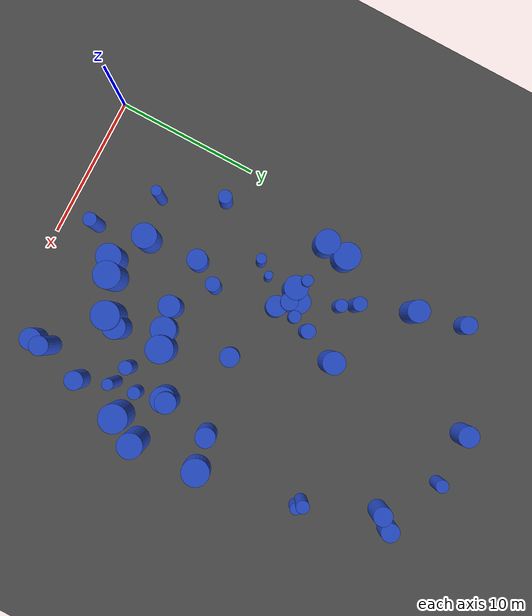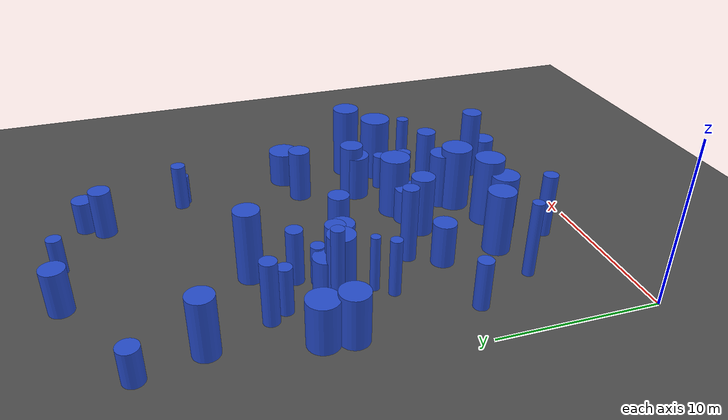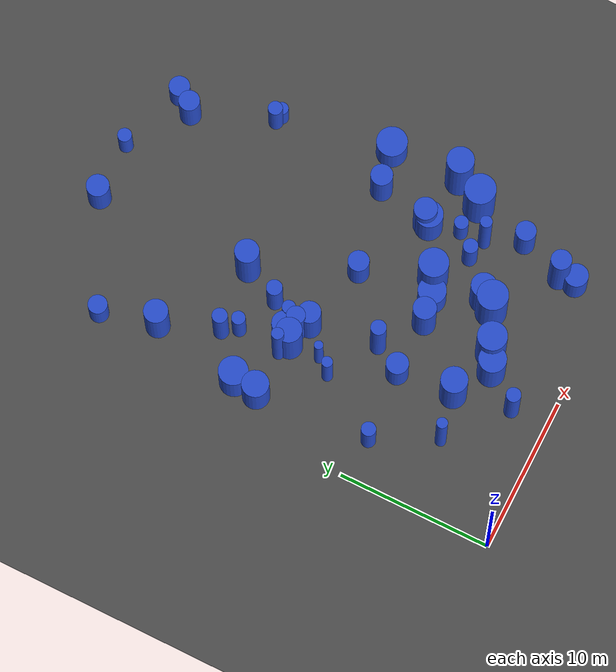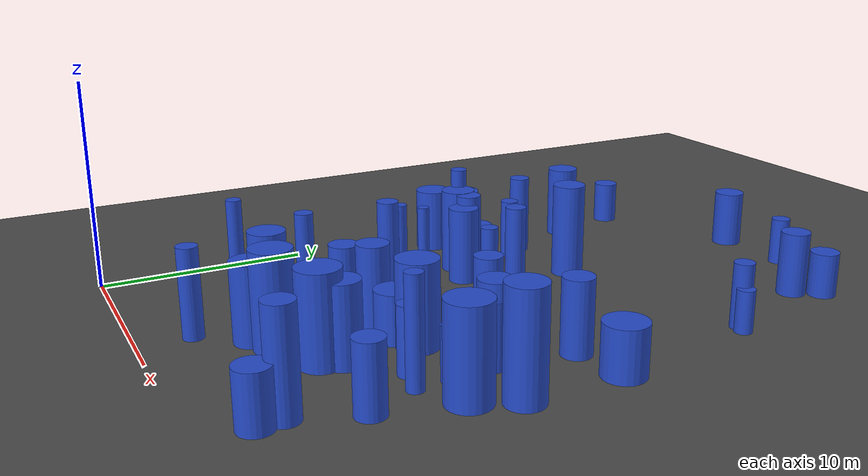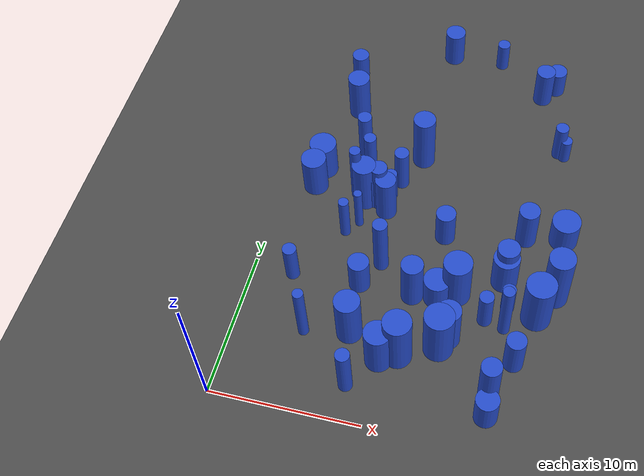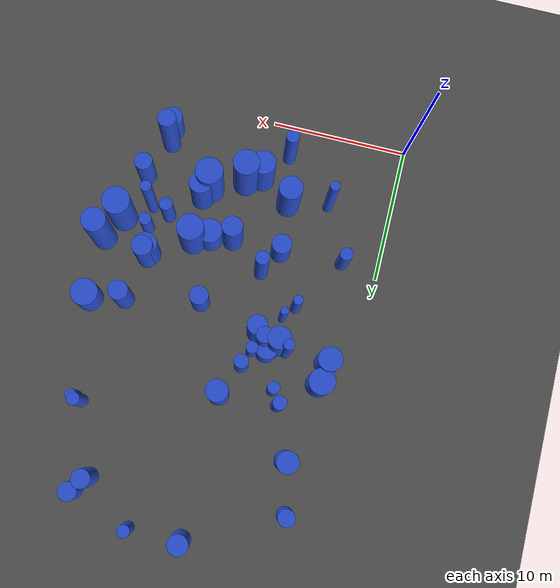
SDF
<sdf version="1.6">
 <world name="default">
  <model name="ground_plane">
   <static>1</static>
   <link name="link">
    <collision name="collision">
     <geometry><plane><normal>0 0 1</normal><size>100 100</size></plane></geometry>
     <surface><friction><ode><mu>100</mu><mu2>50</mu2></ode></friction></surface>
    </collision>
    <visual name="visual">
     <cast_shadows>0</cast_shadows>
     <geometry><plane><normal>0 0 1</normal><size>100 100</size></plane></geometry>
     <material>
      <script><uri>file://media/materials/scripts/gazebo.material</uri><name>Gazebo/Grey</name></script>
     </material>
    </visual>
   </link>
  </model>
  <model name="asphalt_plane">
   <static>1</static>
   <link name="link">
    <collision name="collision"><geometry><box><size>200 200 0.1</size></box></geometry></collision>
    <visual name="visual">
     <cast_shadows>0</cast_shadows>
     <geometry><box><size>200 200 0.1</size></box></geometry>
     <material>
      <script>
       <uri>model://asphalt_plane/materials/scripts</uri>
       <uri>model://asphalt_plane/materials/textures</uri>
       <name>vrc/asphalt</name>
      </script>
     </material>
    </visual>
   </link>
  </model>
  <model name="0">
   <static>0</static>
   <link name="link">
    <inertial>
     <mass>2</mass>
     <inertia><ixx>3.17312</ixx><ixy>0</ixy><ixz>0</ixz><iyy>3.17312</iyy><iyz>0</iyz><izz>0.73489</izz></inertia>
    </inertial>
    <collision name="collision">
     <geometry><cylinder><length>4.10293</length><radius>0.857257</radius></cylinder></geometry>
     <surface><contact><collide_without_contact>1</collide_without_contact></contact></surface>
    </collision>
    <visual name="visual">
     <geometry><cylinder><length>4.10293</length><radius>0.857257</radius></cylinder></geometry>
     <material>
      <script><uri>file://media/materials/scripts/gazebo.material</uri><name>Gazebo/Blue</name></script>
     </material>
    </visual>
    <gravity>0</gravity>
   </link>
   <pose>7.58804 6.08459 2.05146 0 -0 0</pose>
  </model>
  <model name="17">
   <static>0</static>
   <link name="link">
    <inertial>
     <mass>2</mass>
     <inertia><ixx>1.4202</ixx><ixy>0</ixy><ixz>0</ixz><iyy>1.4202</iyy><iyz>0</iyz><izz>0.970689</izz></inertia>
    </inertial>
    <collision name="collision">
     <geometry><cylinder><length>2.36836</length><radius>0.985235</radius></cylinder></geometry>
     <surface><contact><collide_without_contact>1</collide_without_contact></contact></surface>
    </collision>
    <visual name="visual">
     <geometry><cylinder><length>2.36836</length><radius>0.985235</radius></cylinder></geometry>
     <material>
      <script><uri>file://media/materials/scripts/gazebo.material</uri><name>Gazebo/Blue</name></script>
     </material>
    </visual>
    <gravity>0</gravity>
   </link>
   <pose>19.9852 16.4259 1.18418 0 -0 0</pose>
  </model>
  <model name="19">
   <static>0</static>
   <link name="link">
    <inertial>
     <mass>2</mass>
     <inertia><ixx>1.91883</ixx><ixy>0</ixy><ixz>0</ixz><iyy>1.91883</iyy><iyz>0</iyz><izz>0.790618</izz></inertia>
    </inertial>
    <collision name="collision">
     <geometry><cylinder><length>3.02343</length><radius>0.889167</radius></cylinder></geometry>
     <surface><contact><collide_without_contact>1</collide_without_contact></contact></surface>
    </collision>
    <visual name="visual">
     <geometry><cylinder><length>3.02343</length><radius>0.889167</radius></cylinder></geometry>
     <material>
      <script><uri>file://media/materials/scripts/gazebo.material</uri><name>Gazebo/Blue</name></script>
     </material>
    </visual>
    <gravity>0</gravity>
   </link>
   <pose>16.6325 12.2097 1.51172 0 -0 0</pose>
  </model>
  <model name="28">
   <static>0</static>
   <link name="link">
    <inertial>
     <mass>2</mass>
     <inertia><ixx>1.61305</ixx><ixy>0</ixy><ixz>0</ixz><iyy>1.61305</iyy><iyz>0</iyz><izz>0.463081</izz></inertia>
    </inertial>
    <collision name="collision">
     <geometry><cylinder><length>2.87908</length><radius>0.680501</radius></cylinder></geometry>
     <surface><contact><collide_without_contact>1</collide_without_contact></contact></surface>
    </collision>
    <visual name="visual">
     <geometry><cylinder><length>2.87908</length><radius>0.680501</radius></cylinder></geometry>
     <material>
      <script><uri>file://media/materials/scripts/gazebo.material</uri><name>Gazebo/Blue</name></script>
     </material>
    </visual>
    <gravity>0</gravity>
   </link>
   <pose>12.0274 14.794 1.43954 0 -0 0</pose>
  </model>
  <model name="32">
   <static>0</static>
   <link name="link">
    <inertial>
     <mass>2</mass>
     <inertia><ixx>3.9654</ixx><ixy>0</ixy><ixz>0</ixz><iyy>3.9654</iyy><iyz>0</iyz><izz>0.125912</izz></inertia>
    </inertial>
    <collision name="collision">
     <geometry><cylinder><length>4.83887</length><radius>0.354841</radius></cylinder></geometry>
     <surface><contact><collide_without_contact>1</collide_without_contact></contact></surface>
    </collision>
    <visual name="visual">
     <geometry><cylinder><length>4.83887</length><radius>0.354841</radius></cylinder></geometry>
     <material>
      <script><uri>file://media/materials/scripts/gazebo.material</uri><name>Gazebo/Blue</name></script>
     </material>
    </visual>
    <gravity>0</gravity>
   </link>
   <pose>4.66651 5.49479 2.41944 0 -0 0</pose>
  </model>
  <model name="39">
   <static>0</static>
   <link name="link">
    <inertial>
     <mass>2</mass>
     <inertia><ixx>1.84137</ixx><ixy>0</ixy><ixz>0</ixz><iyy>1.84137</iyy><iyz>0</iyz><izz>0.459908</izz></inertia>
    </inertial>
    <collision name="collision">
     <geometry><cylinder><length>3.10942</length><radius>0.678165</radius></cylinder></geometry>
     <surface><contact><collide_without_contact>1</collide_without_contact></contact></surface>
    </collision>
    <visual name="visual">
     <geometry><cylinder><length>3.10942</length><radius>0.678165</radius></cylinder></geometry>
     <material>
      <script><uri>file://media/materials/scripts/gazebo.material</uri><name>Gazebo/Blue</name></script>
     </material>
    </visual>
    <gravity>0</gravity>
   </link>
   <pose>16.5405 28.8099 1.55471 0 -0 0</pose>
  </model>
  <model name="45">
   <static>0</static>
   <link name="link">
    <inertial>
     <mass>2</mass>
     <inertia><ixx>1.28619</ixx><ixy>0</ixy><ixz>0</ixz><iyy>1.28619</iyy><iyz>0</iyz><izz>0.628767</izz></inertia>
    </inertial>
    <collision name="collision">
     <geometry><cylinder><length>2.41471</length><radius>0.792948</radius></cylinder></geometry>
     <surface><contact><collide_without_contact>1</collide_without_contact></contact></surface>
    </collision>
    <visual name="visual">
     <geometry><cylinder><length>2.41471</length><radius>0.792948</radius></cylinder></geometry>
     <material>
      <script><uri>file://media/materials/scripts/gazebo.material</uri><name>Gazebo/Blue</name></script>
     </material>
    </visual>
    <gravity>0</gravity>
   </link>
   <pose>6.54895 17.1856 1.20735 0 -0 0</pose>
  </model>
  <model name="49">
   <static>0</static>
   <link name="link">
    <inertial>
     <mass>2</mass>
     <inertia><ixx>1.03869</ixx><ixy>0</ixy><ixz>0</ixz><iyy>1.03869</iyy><iyz>0</iyz><izz>0.208201</izz></inertia>
    </inertial>
    <collision name="collision">
     <geometry><cylinder><length>2.36803</length><radius>0.45629</radius></cylinder></geometry>
     <surface><contact><collide_without_contact>1</collide_without_contact></contact></surface>
    </collision>
    <visual name="visual">
     <geometry><cylinder><length>2.36803</length><radius>0.45629</radius></cylinder></geometry>
     <material>
      <script><uri>file://media/materials/scripts/gazebo.material</uri><name>Gazebo/Blue</name></script>
     </material>
    </visual>
    <gravity>0</gravity>
   </link>
   <pose>12.9469 31.5137 1.18401 0 -0 0</pose>
  </model>
  <model name="51">
   <static>0</static>
   <link name="link">
    <inertial>
     <mass>2</mass>
     <inertia><ixx>4.04703</ixx><ixy>0</ixy><ixz>0</ixz><iyy>4.04703</iyy><iyz>0</iyz><izz>0.151938</izz></inertia>
    </inertial>
    <collision name="collision">
     <geometry><cylinder><length>4.88122</length><radius>0.389792</radius></cylinder></geometry>
     <surface><contact><collide_without_contact>1</collide_without_contact></contact></surface>
    </collision>
    <visual name="visual">
     <geometry><cylinder><length>4.88122</length><radius>0.389792</radius></cylinder></geometry>
     <material>
      <script><uri>file://media/materials/scripts/gazebo.material</uri><name>Gazebo/Blue</name></script>
     </material>
    </visual>
    <gravity>0</gravity>
   </link>
   <pose>17.2535 8.66033 2.44061 0 -0 0</pose>
  </model>
  <model name="54">
   <static>0</static>
   <link name="link">
    <inertial>
     <mass>2</mass>
     <inertia><ixx>1.90004</ixx><ixy>0</ixy><ixz>0</ixz><iyy>1.90004</iyy><iyz>0</iyz><izz>0.889584</izz></inertia>
    </inertial>
    <collision name="collision">
     <geometry><cylinder><length>2.95491</length><radius>0.943178</radius></cylinder></geometry>
     <surface><contact><collide_without_contact>1</collide_without_contact></contact></surface>
    </collision>
    <visual name="visual">
     <geometry><cylinder><length>2.95491</length><radius>0.943178</radius></cylinder></geometry>
     <material>
      <script><uri>file://media/materials/scripts/gazebo.material</uri><name>Gazebo/Blue</name></script>
     </material>
    </visual>
    <gravity>0</gravity>
   </link>
   <pose>2.3369 18.5513 1.47745 0 -0 0</pose>
  </model>
  <model name="55">
   <static>0</static>
   <link name="link">
    <inertial>
     <mass>2</mass>
     <inertia><ixx>2.77636</ixx><ixy>0</ixy><ixz>0</ixz><iyy>2.77636</iyy><iyz>0</iyz><izz>0.243438</izz></inertia>
    </inertial>
    <collision name="collision">
     <geometry><cylinder><length>3.99097</length><radius>0.493394</radius></cylinder></geometry>
     <surface><contact><collide_without_contact>1</collide_without_contact></contact></surface>
    </collision>
    <visual name="visual">
     <geometry><cylinder><length>3.99097</length><radius>0.493394</radius></cylinder></geometry>
     <material>
      <script><uri>file://media/materials/scripts/gazebo.material</uri><name>Gazebo/Blue</name></script>
     </material>
    </visual>
    <gravity>0</gravity>
   </link>
   <pose>4.84616 20.723 1.99548 0 -0 0</pose>
  </model>
  <model name="65">
   <static>0</static>
   <link name="link">
    <inertial>
     <mass>2</mass>
     <inertia><ixx>2.68412</ixx><ixy>0</ixy><ixz>0</ixz><iyy>2.68412</iyy><iyz>0</iyz><izz>0.778534</izz></inertia>
    </inertial>
    <collision name="collision">
     <geometry><cylinder><length>3.71067</length><radius>0.882346</radius></cylinder></geometry>
     <surface><contact><collide_without_contact>1</collide_without_contact></contact></surface>
    </collision>
    <visual name="visual">
     <geometry><cylinder><length>3.71067</length><radius>0.882346</radius></cylinder></geometry>
     <material>
      <script><uri>file://media/materials/scripts/gazebo.material</uri><name>Gazebo/Blue</name></script>
     </material>
    </visual>
    <gravity>0</gravity>
   </link>
   <pose>9.89569 4.60056 1.85534 0 -0 0</pose>
  </model>
  <model name="67">
   <static>0</static>
   <link name="link">
    <inertial>
     <mass>2</mass>
     <inertia><ixx>2.5861</ixx><ixy>0</ixy><ixz>0</ixz><iyy>2.5861</iyy><iyz>0</iyz><izz>0.518654</izz></inertia>
    </inertial>
    <collision name="collision">
     <geometry><cylinder><length>3.7364</length><radius>0.720177</radius></cylinder></geometry>
     <surface><contact><collide_without_contact>1</collide_without_contact></contact></surface>
    </collision>
    <visual name="visual">
     <geometry><cylinder><length>3.7364</length><radius>0.720177</radius></cylinder></geometry>
     <material>
      <script><uri>file://media/materials/scripts/gazebo.material</uri><name>Gazebo/Blue</name></script>
     </material>
    </visual>
    <gravity>0</gravity>
   </link>
   <pose>7.55571 15.9335 1.8682 0 -0 0</pose>
  </model>
  <model name="68">
   <static>0</static>
   <link name="link">
    <inertial>
     <mass>2</mass>
     <inertia><ixx>1.89087</ixx><ixy>0</ixy><ixz>0</ixz><iyy>1.89087</iyy><iyz>0</iyz><izz>0.429731</izz></inertia>
    </inertial>
    <collision name="collision">
     <geometry><cylinder><length>3.17112</length><radius>0.655539</radius></cylinder></geometry>
     <surface><contact><collide_without_contact>1</collide_without_contact></contact></surface>
    </collision>
    <visual name="visual">
     <geometry><cylinder><length>3.17112</length><radius>0.655539</radius></cylinder></geometry>
     <material>
      <script><uri>file://media/materials/scripts/gazebo.material</uri><name>Gazebo/Blue</name></script>
     </material>
    </visual>
    <gravity>0</gravity>
   </link>
   <pose>18.2845 6.37617 1.58556 0 -0 0</pose>
  </model>
  <model name="70">
   <static>0</static>
   <link name="link">
    <inertial>
     <mass>2</mass>
     <inertia><ixx>3.78775</ixx><ixy>0</ixy><ixz>0</ixz><iyy>3.78775</iyy><iyz>0</iyz><izz>0.890965</izz></inertia>
    </inertial>
    <collision name="collision">
     <geometry><cylinder><length>4.47813</length><radius>0.943909</radius></cylinder></geometry>
     <surface><contact><collide_without_contact>1</collide_without_contact></contact></surface>
    </collision>
    <visual name="visual">
     <geometry><cylinder><length>4.47813</length><radius>0.943909</radius></cylinder></geometry>
     <material>
      <script><uri>file://media/materials/scripts/gazebo.material</uri><name>Gazebo/Blue</name></script>
     </material>
    </visual>
    <gravity>0</gravity>
   </link>
   <pose>11.0126 5.18411 2.23906 0 -0 0</pose>
  </model>
  <model name="72">
   <static>0</static>
   <link name="link">
    <inertial>
     <mass>2</mass>
     <inertia>
      <ixx>2.14031</ixx>
      <ixy>0</ixy>
      <ixz>0</ixz>
      <iyy>2.14031</iyy>
      <iyz>0</iyz>
      <izz>0.0819198</izz>
     </inertia>
    </inertial>
    <collision name="collision">
     <geometry><cylinder><length>3.5491</length><radius>0.286216</radius></cylinder></geometry>
     <surface><contact><collide_without_contact>1</collide_without_contact></contact></surface>
    </collision>
    <visual name="visual">
     <geometry><cylinder><length>3.5491</length><radius>0.286216</radius></cylinder></geometry>
     <material>
      <script><uri>file://media/materials/scripts/gazebo.material</uri><name>Gazebo/Blue</name></script>
     </material>
    </visual>
    <gravity>0</gravity>
   </link>
   <pose>5.98317 14.5224 1.77455 0 -0 0</pose>
  </model>
  <model name="96">
   <static>0</static>
   <link name="link">
    <inertial>
     <mass>2</mass>
     <inertia><ixx>3.12972</ixx><ixy>0</ixy><ixz>0</ixz><iyy>3.12972</iyy><iyz>0</iyz><izz>0.918622</izz></inertia>
    </inertial>
    <collision name="collision">
     <geometry><cylinder><length>4.00281</length><radius>0.958448</radius></cylinder></geometry>
     <surface><contact><collide_without_contact>1</collide_without_contact></contact></surface>
    </collision>
    <visual name="visual">
     <geometry><cylinder><length>4.00281</length><radius>0.958448</radius></cylinder></geometry>
     <material>
      <script><uri>file://media/materials/scripts/gazebo.material</uri><name>Gazebo/Blue</name></script>
     </material>
    </visual>
    <gravity>0</gravity>
   </link>
   <pose>13.7137 10.487 2.0014 0 -0 0</pose>
  </model>
  <model name="98">
   <static>0</static>
   <link name="link">
    <inertial>
     <mass>2</mass>
     <inertia><ixx>3.96173</ixx><ixy>0</ixy><ixz>0</ixz><iyy>3.96173</iyy><iyz>0</iyz><izz>0.434607</izz></inertia>
    </inertial>
    <collision name="collision">
     <geometry><cylinder><length>4.73989</length><radius>0.659247</radius></cylinder></geometry>
     <surface><contact><collide_without_contact>1</collide_without_contact></contact></surface>
    </collision>
    <visual name="visual">
     <geometry><cylinder><length>4.73989</length><radius>0.659247</radius></cylinder></geometry>
     <material>
      <script><uri>file://media/materials/scripts/gazebo.material</uri><name>Gazebo/Blue</name></script>
     </material>
    </visual>
    <gravity>0</gravity>
   </link>
   <pose>17.1698 3.49956 2.36994 0 -0 0</pose>
  </model>
  <model name="100">
   <static>0</static>
   <link name="link">
    <inertial>
     <mass>2</mass>
     <inertia><ixx>3.05003</ixx><ixy>0</ixy><ixz>0</ixz><iyy>3.05003</iyy><iyz>0</iyz><izz>0.222899</izz></inertia>
    </inertial>
    <collision name="collision">
     <geometry><cylinder><length>4.19899</length><radius>0.472122</radius></cylinder></geometry>
     <surface><contact><collide_without_contact>1</collide_without_contact></contact></surface>
    </collision>
    <visual name="visual">
     <geometry><cylinder><length>4.19899</length><radius>0.472122</radius></cylinder></geometry>
     <material>
      <script><uri>file://media/materials/scripts/gazebo.material</uri><name>Gazebo/Blue</name></script>
     </material>
    </visual>
    <gravity>0</gravity>
   </link>
   <pose>8.32558 2.43405 2.09949 0 -0 0</pose>
  </model>
  <model name="102">
   <static>0</static>
   <link name="link">
    <inertial>
     <mass>2</mass>
     <inertia><ixx>3.49696</ixx><ixy>0</ixy><ixz>0</ixz><iyy>3.49696</iyy><iyz>0</iyz><izz>0.981406</izz></inertia>
    </inertial>
    <collision name="collision">
     <geometry><cylinder><length>4.24706</length><radius>0.99066</radius></cylinder></geometry>
     <surface><contact><collide_without_contact>1</collide_without_contact></contact></surface>
    </collision>
    <visual name="visual">
     <geometry><cylinder><length>4.24706</length><radius>0.99066</radius></cylinder></geometry>
     <material>
      <script><uri>file://media/materials/scripts/gazebo.material</uri><name>Gazebo/Blue</name></script>
     </material>
    </visual>
    <gravity>0</gravity>
   </link>
   <pose>13.4145 6.31929 2.12353 0 -0 0</pose>
  </model>
  <model name="119">
   <static>0</static>
   <link name="link">
    <inertial>
     <mass>2</mass>
     <inertia><ixx>1.01805</ixx><ixy>0</ixy><ixz>0</ixz><iyy>1.01805</iyy><iyz>0</iyz><izz>0.447713</izz></inertia>
    </inertial>
    <collision name="collision">
     <geometry><cylinder><length>2.18293</length><radius>0.669113</radius></cylinder></geometry>
     <surface><contact><collide_without_contact>1</collide_without_contact></contact></surface>
    </collision>
    <visual name="visual">
     <geometry><cylinder><length>2.18293</length><radius>0.669113</radius></cylinder></geometry>
     <material>
      <script><uri>file://media/materials/scripts/gazebo.material</uri><name>Gazebo/Blue</name></script>
     </material>
    </visual>
    <gravity>0</gravity>
   </link>
   <pose>17.3628 29.9476 1.09146 0 -0 0</pose>
  </model>
  <model name="128">
   <static>0</static>
   <link name="link">
    <inertial>
     <mass>2</mass>
     <inertia><ixx>2.24245</ixx><ixy>0</ixy><ixz>0</ixz><iyy>2.24245</iyy><iyz>0</iyz><izz>0.12581</izz></inertia>
    </inertial>
    <collision name="collision">
     <geometry><cylinder><length>3.61625</length><radius>0.354698</radius></cylinder></geometry>
     <surface><contact><collide_without_contact>1</collide_without_contact></contact></surface>
    </collision>
    <visual name="visual">
     <geometry><cylinder><length>3.61625</length><radius>0.354698</radius></cylinder></geometry>
     <material>
      <script><uri>file://media/materials/scripts/gazebo.material</uri><name>Gazebo/Blue</name></script>
     </material>
    </visual>
    <gravity>0</gravity>
   </link>
   <pose>5.24774 13.5813 1.80813 0 -0 0</pose>
  </model>
  <model name="131">
   <static>0</static>
   <link name="link">
    <inertial>
     <mass>2</mass>
     <inertia><ixx>1.00721</ixx><ixy>0</ixy><ixz>0</ixz><iyy>1.00721</iyy><iyz>0</iyz><izz>0.383866</izz></inertia>
    </inertial>
    <collision name="collision">
     <geometry><cylinder><length>2.2117</length><radius>0.61957</radius></cylinder></geometry>
     <surface><contact><collide_without_contact>1</collide_without_contact></contact></surface>
    </collision>
    <visual name="visual">
     <geometry><cylinder><length>2.2117</length><radius>0.61957</radius></cylinder></geometry>
     <material>
      <script><uri>file://media/materials/scripts/gazebo.material</uri><name>Gazebo/Blue</name></script>
     </material>
    </visual>
    <gravity>0</gravity>
   </link>
   <pose>2.52632 28.0362 1.10585 0 -0 0</pose>
  </model>
  <model name="134">
   <static>0</static>
   <link name="link">
    <inertial>
     <mass>2</mass>
     <inertia>
      <ixx>2.76564</ixx>
      <ixy>0</ixy>
      <ixz>0</ixz>
      <iyy>2.76564</iyy>
      <iyz>0</iyz>
      <izz>0.0823417</izz>
     </inertia>
    </inertial>
    <collision name="collision">
     <geometry><cylinder><length>4.04312</length><radius>0.286952</radius></cylinder></geometry>
     <surface><contact><collide_without_contact>1</collide_without_contact></contact></surface>
    </collision>
    <visual name="visual">
     <geometry><cylinder><length>4.04312</length><radius>0.286952</radius></cylinder></geometry>
     <material>
      <script><uri>file://media/materials/scripts/gazebo.material</uri><name>Gazebo/Blue</name></script>
     </material>
    </visual>
    <gravity>0</gravity>
   </link>
   <pose>8.13673 11.5728 2.02156 0 -0 0</pose>
  </model>
  <model name="142">
   <static>0</static>
   <link name="link">
    <inertial>
     <mass>2</mass>
     <inertia><ixx>1.31696</ixx><ixy>0</ixy><ixz>0</ixz><iyy>1.31696</iyy><iyz>0</iyz><izz>0.811578</izz></inertia>
    </inertial>
    <collision name="collision">
     <geometry><cylinder><length>2.33816</length><radius>0.900876</radius></cylinder></geometry>
     <surface><contact><collide_without_contact>1</collide_without_contact></contact></surface>
    </collision>
    <visual name="visual">
     <geometry><cylinder><length>2.33816</length><radius>0.900876</radius></cylinder></geometry>
     <material>
      <script><uri>file://media/materials/scripts/gazebo.material</uri><name>Gazebo/Blue</name></script>
     </material>
    </visual>
    <gravity>0</gravity>
   </link>
   <pose>12.5077 9.96442 1.16908 0 -0 0</pose>
  </model>
  <model name="144">
   <static>0</static>
   <link name="link">
    <inertial>
     <mass>2</mass>
     <inertia><ixx>2.28391</ixx><ixy>0</ixy><ixz>0</ixz><iyy>2.28391</iyy><iyz>0</iyz><izz>0.498376</izz></inertia>
    </inertial>
    <collision name="collision">
     <geometry><cylinder><length>3.49405</length><radius>0.705958</radius></cylinder></geometry>
     <surface><contact><collide_without_contact>1</collide_without_contact></contact></surface>
    </collision>
    <visual name="visual">
     <geometry><cylinder><length>3.49405</length><radius>0.705958</radius></cylinder></geometry>
     <material>
      <script><uri>file://media/materials/scripts/gazebo.material</uri><name>Gazebo/Blue</name></script>
     </material>
    </visual>
    <gravity>0</gravity>
   </link>
   <pose>17.4609 15.8955 1.74702 0 -0 0</pose>
  </model>
  <model name="146">
   <static>0</static>
   <link name="link">
    <inertial>
     <mass>2</mass>
     <inertia><ixx>2.62442</ixx><ixy>0</ixy><ixz>0</ixz><iyy>2.62442</iyy><iyz>0</iyz><izz>0.606882</izz></inertia>
    </inertial>
    <collision name="collision">
     <geometry><cylinder><length>3.73174</length><radius>0.779026</radius></cylinder></geometry>
     <surface><contact><collide_without_contact>1</collide_without_contact></contact></surface>
    </collision>
    <visual name="visual">
     <geometry><cylinder><length>3.73174</length><radius>0.779026</radius></cylinder></geometry>
     <material>
      <script><uri>file://media/materials/scripts/gazebo.material</uri><name>Gazebo/Blue</name></script>
     </material>
    </visual>
    <gravity>0</gravity>
   </link>
   <pose>3.41377 24.3972 1.86587 0 -0 0</pose>
  </model>
  <model name="150">
   <static>0</static>
   <link name="link">
    <inertial>
     <mass>2</mass>
     <inertia><ixx>1.70241</ixx><ixy>0</ixy><ixz>0</ixz><iyy>1.70241</iyy><iyz>0</iyz><izz>0.231826</izz></inertia>
    </inertial>
    <collision name="collision">
     <geometry><cylinder><length>3.08528</length><radius>0.481483</radius></cylinder></geometry>
     <surface><contact><collide_without_contact>1</collide_without_contact></contact></surface>
    </collision>
    <visual name="visual">
     <geometry><cylinder><length>3.08528</length><radius>0.481483</radius></cylinder></geometry>
     <material>
      <script><uri>file://media/materials/scripts/gazebo.material</uri><name>Gazebo/Blue</name></script>
     </material>
    </visual>
    <gravity>0</gravity>
   </link>
   <pose>15.9163 9.0167 1.54264 0 -0 0</pose>
  </model>
  <model name="155">
   <static>0</static>
   <link name="link">
    <inertial>
     <mass>2</mass>
     <inertia><ixx>1.61175</ixx><ixy>0</ixy><ixz>0</ixz><iyy>1.61175</iyy><iyz>0</iyz><izz>0.196212</izz></inertia>
    </inertial>
    <collision name="collision">
     <geometry><cylinder><length>3.01361</length><radius>0.442958</radius></cylinder></geometry>
     <surface><contact><collide_without_contact>1</collide_without_contact></contact></surface>
    </collision>
    <visual name="visual">
     <geometry><cylinder><length>3.01361</length><radius>0.442958</radius></cylinder></geometry>
     <material>
      <script><uri>file://media/materials/scripts/gazebo.material</uri><name>Gazebo/Blue</name></script>
     </material>
    </visual>
    <gravity>0</gravity>
   </link>
   <pose>5.44769 19.7691 1.5068 0 -0 0</pose>
  </model>
  <model name="173">
   <static>0</static>
   <link name="link">
    <inertial>
     <mass>2</mass>
     <inertia><ixx>3.54667</ixx><ixy>0</ixy><ixz>0</ixz><iyy>3.54667</iyy><iyz>0</iyz><izz>0.99816</izz></inertia>
    </inertial>
    <collision name="collision">
     <geometry><cylinder><length>4.27616</length><radius>0.99908</radius></cylinder></geometry>
     <surface><contact><collide_without_contact>1</collide_without_contact></contact></surface>
    </collision>
    <visual name="visual">
     <geometry><cylinder><length>4.27616</length><radius>0.99908</radius></cylinder></geometry>
     <material>
      <script><uri>file://media/materials/scripts/gazebo.material</uri><name>Gazebo/Blue</name></script>
     </material>
    </visual>
    <gravity>0</gravity>
   </link>
   <pose>19.1438 9.96415 2.13808 0 -0 0</pose>
  </model>
  <model name="176">
   <static>0</static>
   <link name="link">
    <inertial>
     <mass>2</mass>
     <inertia><ixx>2.66861</ixx><ixy>0</ixy><ixz>0</ixz><iyy>2.66861</iyy><iyz>0</iyz><izz>0.656205</izz></inertia>
    </inertial>
    <collision name="collision">
     <geometry><cylinder><length>3.7474</length><radius>0.810065</radius></cylinder></geometry>
     <surface><contact><collide_without_contact>1</collide_without_contact></contact></surface>
    </collision>
    <visual name="visual">
     <geometry><cylinder><length>3.7474</length><radius>0.810065</radius></cylinder></geometry>
     <material>
      <script><uri>file://media/materials/scripts/gazebo.material</uri><name>Gazebo/Blue</name></script>
     </material>
    </visual>
    <gravity>0</gravity>
   </link>
   <pose>13.8585 7.12105 1.8737 0 -0 0</pose>
  </model>
  <model name="177">
   <static>0</static>
   <link name="link">
    <inertial>
     <mass>2</mass>
     <inertia><ixx>2.61872</ixx><ixy>0</ixy><ixz>0</ixz><iyy>2.61872</iyy><iyz>0</iyz><izz>0.558174</izz></inertia>
    </inertial>
    <collision name="collision">
     <geometry><cylinder><length>3.74671</length><radius>0.74711</radius></cylinder></geometry>
     <surface><contact><collide_without_contact>1</collide_without_contact></contact></surface>
    </collision>
    <visual name="visual">
     <geometry><cylinder><length>3.74671</length><radius>0.74711</radius></cylinder></geometry>
     <material>
      <script><uri>file://media/materials/scripts/gazebo.material</uri><name>Gazebo/Blue</name></script>
     </material>
    </visual>
    <gravity>0</gravity>
   </link>
   <pose>16.657 12.4871 1.87335 0 -0 0</pose>
  </model>
  <model name="178">
   <static>0</static>
   <link name="link">
    <inertial>
     <mass>2</mass>
     <inertia><ixx>4.35734</ixx><ixy>0</ixy><ixz>0</ixz><iyy>4.35734</iyy><iyz>0</iyz><izz>0.762435</izz></inertia>
    </inertial>
    <collision name="collision">
     <geometry><cylinder><length>4.88434</length><radius>0.873175</radius></cylinder></geometry>
     <surface><contact><collide_without_contact>1</collide_without_contact></contact></surface>
    </collision>
    <visual name="visual">
     <geometry><cylinder><length>4.88434</length><radius>0.873175</radius></cylinder></geometry>
     <material>
      <script><uri>file://media/materials/scripts/gazebo.material</uri><name>Gazebo/Blue</name></script>
     </material>
    </visual>
    <gravity>0</gravity>
   </link>
   <pose>20.1013 11.808 2.44217 0 -0 0</pose>
  </model>
  <model name="179">
   <static>0</static>
   <link name="link">
    <inertial>
     <mass>2</mass>
     <inertia><ixx>1.08249</ixx><ixy>0</ixy><ixz>0</ixz><iyy>1.08249</iyy><iyz>0</iyz><izz>0.205577</izz></inertia>
    </inertial>
    <collision name="collision">
     <geometry><cylinder><length>2.4245</length><radius>0.453406</radius></cylinder></geometry>
     <surface><contact><collide_without_contact>1</collide_without_contact></contact></surface>
    </collision>
    <visual name="visual">
     <geometry><cylinder><length>2.4245</length><radius>0.453406</radius></cylinder></geometry>
     <material>
      <script><uri>file://media/materials/scripts/gazebo.material</uri><name>Gazebo/Blue</name></script>
     </material>
    </visual>
    <gravity>0</gravity>
   </link>
   <pose>17.2031 10.256 1.21225 0 -0 0</pose>
  </model>
  <model name="194">
   <static>0</static>
   <link name="link">
    <inertial>
     <mass>2</mass>
     <inertia><ixx>3.0246</ixx><ixy>0</ixy><ixz>0</ixz><iyy>3.0246</iyy><iyz>0</iyz><izz>0.355134</izz></inertia>
    </inertial>
    <collision name="collision">
     <geometry><cylinder><length>4.13306</length><radius>0.595932</radius></cylinder></geometry>
     <surface><contact><collide_without_contact>1</collide_without_contact></contact></surface>
    </collision>
    <visual name="visual">
     <geometry><cylinder><length>4.13306</length><radius>0.595932</radius></cylinder></geometry>
     <material>
      <script><uri>file://media/materials/scripts/gazebo.material</uri><name>Gazebo/Blue</name></script>
     </material>
    </visual>
    <gravity>0</gravity>
   </link>
   <pose>6.92182 16.5467 2.06653 0 -0 0</pose>
  </model>
  <model name="198">
   <static>0</static>
   <link name="link">
    <inertial>
     <mass>2</mass>
     <inertia><ixx>4.2338</ixx><ixy>0</ixy><ixz>0</ixz><iyy>4.2338</iyy><iyz>0</iyz><izz>0.152639</izz></inertia>
    </inertial>
    <collision name="collision">
     <geometry><cylinder><length>4.99449</length><radius>0.39069</radius></cylinder></geometry>
     <surface><contact><collide_without_contact>1</collide_without_contact></contact></surface>
    </collision>
    <visual name="visual">
     <geometry><cylinder><length>4.99449</length><radius>0.39069</radius></cylinder></geometry>
     <material>
      <script><uri>file://media/materials/scripts/gazebo.material</uri><name>Gazebo/Blue</name></script>
     </material>
    </visual>
    <gravity>0</gravity>
   </link>
   <pose>5.18608 16.9197 2.49724 0 -0 0</pose>
  </model>
  <model name="200">
   <static>0</static>
   <link name="link">
    <inertial>
     <mass>2</mass>
     <inertia><ixx>2.08045</ixx><ixy>0</ixy><ixz>0</ixz><iyy>2.08045</iyy><iyz>0</iyz><izz>0.755702</izz></inertia>
    </inertial>
    <collision name="collision">
     <geometry><cylinder><length>3.19619</length><radius>0.869311</radius></cylinder></geometry>
     <surface><contact><collide_without_contact>1</collide_without_contact></contact></surface>
    </collision>
    <visual name="visual">
     <geometry><cylinder><length>3.19619</length><radius>0.869311</radius></cylinder></geometry>
     <material>
      <script><uri>file://media/materials/scripts/gazebo.material</uri><name>Gazebo/Blue</name></script>
     </material>
    </visual>
    <gravity>0</gravity>
   </link>
   <pose>2.14923 16.9427 1.59809 0 -0 0</pose>
  </model>
  <model name="210">
   <static>0</static>
   <link name="link">
    <inertial>
     <mass>2</mass>
     <inertia><ixx>3.85439</ixx><ixy>0</ixy><ixz>0</ixz><iyy>3.85439</iyy><iyz>0</iyz><izz>0.607293</izz></inertia>
    </inertial>
    <collision name="collision">
     <geometry><cylinder><length>4.61568</length><radius>0.77929</radius></cylinder></geometry>
     <surface><contact><collide_without_contact>1</collide_without_contact></contact></surface>
    </collision>
    <visual name="visual">
     <geometry><cylinder><length>4.61568</length><radius>0.77929</radius></cylinder></geometry>
     <material>
      <script><uri>file://media/materials/scripts/gazebo.material</uri><name>Gazebo/Blue</name></script>
     </material>
    </visual>
    <gravity>0</gravity>
   </link>
   <pose>9.09945 20.995 2.30784 0 -0 0</pose>
  </model>
  <model name="214">
   <static>0</static>
   <link name="link">
    <inertial>
     <mass>2</mass>
     <inertia><ixx>3.20691</ixx><ixy>0</ixy><ixz>0</ixz><iyy>3.20691</iyy><iyz>0</iyz><izz>0.673461</izz></inertia>
    </inertial>
    <collision name="collision">
     <geometry><cylinder><length>4.14983</length><radius>0.820647</radius></cylinder></geometry>
     <surface><contact><collide_without_contact>1</collide_without_contact></contact></surface>
    </collision>
    <visual name="visual">
     <geometry><cylinder><length>4.14983</length><radius>0.820647</radius></cylinder></geometry>
     <material>
      <script><uri>file://media/materials/scripts/gazebo.material</uri><name>Gazebo/Blue</name></script>
     </material>
    </visual>
    <gravity>0</gravity>
   </link>
   <pose>5.88974 16.5064 2.07491 0 -0 0</pose>
  </model>
  <model name="216">
   <static>0</static>
   <link name="link">
    <inertial>
     <mass>2</mass>
     <inertia><ixx>1.55664</ixx><ixy>0</ixy><ixz>0</ixz><iyy>1.55664</iyy><iyz>0</iyz><izz>0.512471</izz></inertia>
    </inertial>
    <collision name="collision">
     <geometry><cylinder><length>2.79329</length><radius>0.715871</radius></cylinder></geometry>
     <surface><contact><collide_without_contact>1</collide_without_contact></contact></surface>
    </collision>
    <visual name="visual">
     <geometry><cylinder><length>2.79329</length><radius>0.715871</radius></cylinder></geometry>
     <material>
      <script><uri>file://media/materials/scripts/gazebo.material</uri><name>Gazebo/Blue</name></script>
     </material>
    </visual>
    <gravity>0</gravity>
   </link>
   <pose>7.27759 9.78099 1.39664 0 -0 0</pose>
  </model>
  <model name="217">
   <static>0</static>
   <link name="link">
    <inertial>
     <mass>2</mass>
     <inertia><ixx>1.62463</ixx><ixy>0</ixy><ixz>0</ixz><iyy>1.62463</iyy><iyz>0</iyz><izz>0.538229</izz></inertia>
    </inertial>
    <collision name="collision">
     <geometry><cylinder><length>2.85186</length><radius>0.733641</radius></cylinder></geometry>
     <surface><contact><collide_without_contact>1</collide_without_contact></contact></surface>
    </collision>
    <visual name="visual">
     <geometry><cylinder><length>2.85186</length><radius>0.733641</radius></cylinder></geometry>
     <material>
      <script><uri>file://media/materials/scripts/gazebo.material</uri><name>Gazebo/Blue</name></script>
     </material>
    </visual>
    <gravity>0</gravity>
   </link>
   <pose>9.16884 31.4224 1.42593 0 -0 0</pose>
  </model>
  <model name="218">
   <static>0</static>
   <link name="link">
    <inertial>
     <mass>2</mass>
     <inertia>
      <ixx>1.59405</ixx>
      <ixy>0</ixy>
      <ixz>0</ixz>
      <iyy>1.59405</iyy>
      <iyz>0</iyz>
      <izz>0.0837609</izz>
     </inertia>
    </inertial>
    <collision name="collision">
     <geometry><cylinder><length>3.05172</length><radius>0.289415</radius></cylinder></geometry>
     <surface><contact><collide_without_contact>1</collide_without_contact></contact></surface>
    </collision>
    <visual name="visual">
     <geometry><cylinder><length>3.05172</length><radius>0.289415</radius></cylinder></geometry>
     <material>
      <script><uri>file://media/materials/scripts/gazebo.material</uri><name>Gazebo/Blue</name></script>
     </material>
    </visual>
    <gravity>0</gravity>
   </link>
   <pose>6.53058 16.2683 1.52586 0 -0 0</pose>
  </model>
  <model name="219">
   <static>0</static>
   <link name="link">
    <inertial>
     <mass>2</mass>
     <inertia><ixx>1.66586</ixx><ixy>0</ixy><ixz>0</ixz><iyy>1.66586</iyy><iyz>0</iyz><izz>0.21267</izz></inertia>
    </inertial>
    <collision name="collision">
     <geometry><cylinder><length>3.05894</length><radius>0.461161</radius></cylinder></geometry>
     <surface><contact><collide_without_contact>1</collide_without_contact></contact></surface>
    </collision>
    <visual name="visual">
     <geometry><cylinder><length>3.05894</length><radius>0.461161</radius></cylinder></geometry>
     <material>
      <script><uri>file://media/materials/scripts/gazebo.material</uri><name>Gazebo/Blue</name></script>
     </material>
    </visual>
    <gravity>0</gravity>
   </link>
   <pose>18.5083 23.7989 1.52947 0 -0 0</pose>
  </model>
  <model name="227">
   <static>0</static>
   <link name="link">
    <inertial>
     <mass>2</mass>
     <inertia><ixx>1.16522</ixx><ixy>0</ixy><ixz>0</ixz><iyy>1.16522</iyy><iyz>0</iyz><izz>0.190288</izz></inertia>
    </inertial>
    <collision name="collision">
     <geometry><cylinder><length>2.53386</length><radius>0.43622</radius></cylinder></geometry>
     <surface><contact><collide_without_contact>1</collide_without_contact></contact></surface>
    </collision>
    <visual name="visual">
     <geometry><cylinder><length>2.53386</length><radius>0.43622</radius></cylinder></geometry>
     <material>
      <script><uri>file://media/materials/scripts/gazebo.material</uri><name>Gazebo/Blue</name></script>
     </material>
    </visual>
    <gravity>0</gravity>
   </link>
   <pose>7.56621 17.3752 1.26693 0 -0 0</pose>
  </model>
  <model name="230">
   <static>0</static>
   <link name="link">
    <inertial>
     <mass>2</mass>
     <inertia><ixx>2.84759</ixx><ixy>0</ixy><ixz>0</ixz><iyy>2.84759</iyy><iyz>0</iyz><izz>0.555509</izz></inertia>
    </inertial>
    <collision name="collision">
     <geometry><cylinder><length>3.9267</length><radius>0.745325</radius></cylinder></geometry>
     <surface><contact><collide_without_contact>1</collide_without_contact></contact></surface>
    </collision>
    <visual name="visual">
     <geometry><cylinder><length>3.9267</length><radius>0.745325</radius></cylinder></geometry>
     <material>
      <script><uri>file://media/materials/scripts/gazebo.material</uri><name>Gazebo/Blue</name></script>
     </material>
    </visual>
    <gravity>0</gravity>
   </link>
   <pose>10.8914 9.71009 1.96335 0 -0 0</pose>
  </model>
  <model name="231">
   <static>0</static>
   <link name="link">
    <inertial>
     <mass>2</mass>
     <inertia><ixx>1.37799</ixx><ixy>0</ixy><ixz>0</ixz><iyy>1.37799</iyy><iyz>0</iyz><izz>0.576397</izz></inertia>
    </inertial>
    <collision name="collision">
     <geometry><cylinder><length>2.5571</length><radius>0.759208</radius></cylinder></geometry>
     <surface><contact><collide_without_contact>1</collide_without_contact></contact></surface>
    </collision>
    <visual name="visual">
     <geometry><cylinder><length>2.5571</length><radius>0.759208</radius></cylinder></geometry>
     <material>
      <script><uri>file://media/materials/scripts/gazebo.material</uri><name>Gazebo/Blue</name></script>
     </material>
    </visual>
    <gravity>0</gravity>
   </link>
   <pose>17.278 2.4037 1.27855 0 -0 0</pose>
  </model>
  <model name="233">
   <static>0</static>
   <link name="link">
    <inertial>
     <mass>2</mass>
     <inertia><ixx>2.20352</ixx><ixy>0</ixy><ixz>0</ixz><iyy>2.20352</iyy><iyz>0</iyz><izz>0.261686</izz></inertia>
    </inertial>
    <collision name="collision">
     <geometry><cylinder><length>3.52648</length><radius>0.511553</radius></cylinder></geometry>
     <surface><contact><collide_without_contact>1</collide_without_contact></contact></surface>
    </collision>
    <visual name="visual">
     <geometry><cylinder><length>3.52648</length><radius>0.511553</radius></cylinder></geometry>
     <material>
      <script><uri>file://media/materials/scripts/gazebo.material</uri><name>Gazebo/Blue</name></script>
     </material>
    </visual>
    <gravity>0</gravity>
   </link>
   <pose>8.03576 18.5915 1.76324 0 -0 0</pose>
  </model>
  <model name="237">
   <static>0</static>
   <link name="link">
    <inertial>
     <mass>2</mass>
     <inertia><ixx>1.73145</ixx><ixy>0</ixy><ixz>0</ixz><iyy>1.73145</iyy><iyz>0</iyz><izz>0.219115</izz></inertia>
    </inertial>
    <collision name="collision">
     <geometry><cylinder><length>3.11951</length><radius>0.468098</radius></cylinder></geometry>
     <surface><contact><collide_without_contact>1</collide_without_contact></contact></surface>
    </collision>
    <visual name="visual">
     <geometry><cylinder><length>3.11951</length><radius>0.468098</radius></cylinder></geometry>
     <material>
      <script><uri>file://media/materials/scripts/gazebo.material</uri><name>Gazebo/Blue</name></script>
     </material>
    </visual>
    <gravity>0</gravity>
   </link>
   <pose>2.70861 9.48537 1.55976 0 -0 0</pose>
  </model>
  <model name="238">
   <static>0</static>
   <link name="link">
    <inertial>
     <mass>2</mass>
     <inertia><ixx>4.05026</ixx><ixy>0</ixy><ixz>0</ixz><iyy>4.05026</iyy><iyz>0</iyz><izz>0.247757</izz></inertia>
    </inertial>
    <collision name="collision">
     <geometry><cylinder><length>4.85369</length><radius>0.497752</radius></cylinder></geometry>
     <surface><contact><collide_without_contact>1</collide_without_contact></contact></surface>
    </collision>
    <visual name="visual">
     <geometry><cylinder><length>4.85369</length><radius>0.497752</radius></cylinder></geometry>
     <material>
      <script><uri>file://media/materials/scripts/gazebo.material</uri><name>Gazebo/Blue</name></script>
     </material>
    </visual>
    <gravity>0</gravity>
   </link>
   <pose>8.29883 11.6 2.42685 0 -0 0</pose>
  </model>
  <model name="239">
   <static>0</static>
   <link name="link">
    <inertial>
     <mass>2</mass>
     <inertia>
      <ixx>0.770684</ixx>
      <ixy>0</ixy>
      <ixz>0</ixz>
      <iyy>0.770684</iyy>
      <iyz>0</iyz>
      <izz>0.170655</izz>
     </inertia>
    </inertial>
    <collision name="collision">
     <geometry><cylinder><length>2.02784</length><radius>0.413104</radius></cylinder></geometry>
     <surface><contact><collide_without_contact>1</collide_without_contact></contact></surface>
    </collision>
    <visual name="visual">
     <geometry><cylinder><length>2.02784</length><radius>0.413104</radius></cylinder></geometry>
     <material>
      <script><uri>file://media/materials/scripts/gazebo.material</uri><name>Gazebo/Blue</name></script>
     </material>
    </visual>
    <gravity>0</gravity>
   </link>
   <pose>18.9607 23.5768 1.01392 0 -0 0</pose>
  </model>
 </world>
</sdf>
